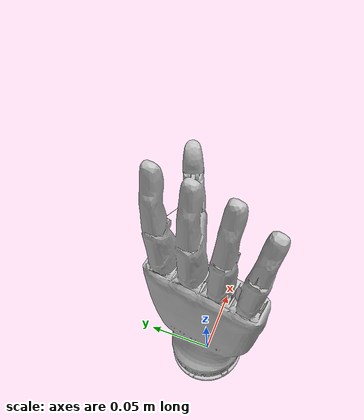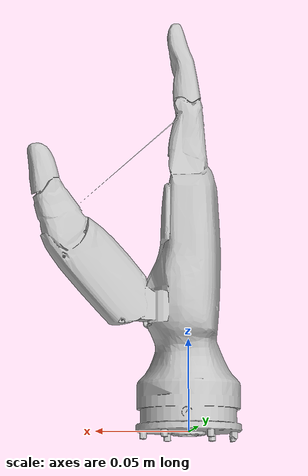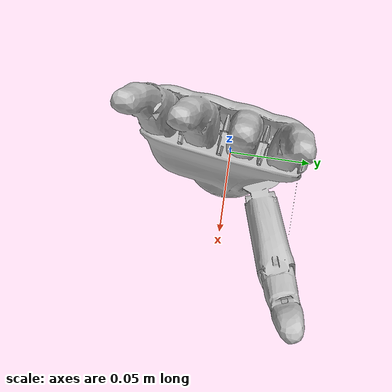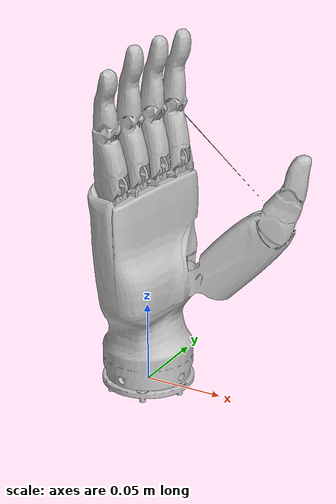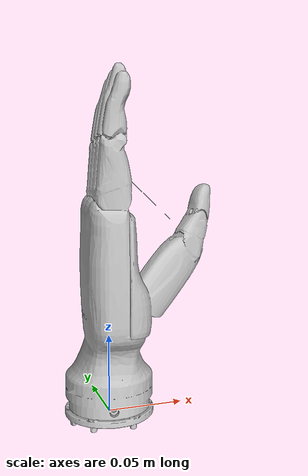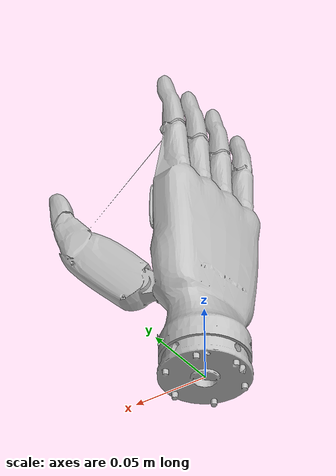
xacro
<?xml version="1.0"?>
<robot name="right_hand" xmlns:xacro="http://www.ros.org/wiki/xacro">
  <!-- Define constants -->
  <xacro:property name="mesh_path" value="file://$(find dual_rm_description)/meshes/arms_65b/" />
  <!-- Macro for visual and collision elements -->
  <xacro:macro name="visual_collision" params="mesh">
    <visual>
      <origin xyz="0 0 0" rpy="0 0 0" />
      <geometry>
        <mesh filename="${mesh_path}${mesh}" />
      </geometry>
      <material name="">
        <color rgba="0.75294 0.75294 0.75294 1" />
      </material>
    </visual>
    <collision>
      <origin xyz="0 0 0" rpy="0 0 0" />
      <geometry>
        <mesh filename="${mesh_path}${mesh}" />
      </geometry>
    </collision>
  </xacro:macro>
  <link
    name="r_hand_base_link">
    <inertial>
      <origin
        xyz="-0.0077366 0.0020217 0.084945"
        rpy="0 0 0" />
      <mass
        value="0.19137" />
      <inertia
        ixx="0.00045852"
        ixy="-2.2207E-05"
        ixz="-5.5348E-06"
        iyy="0.00053494"
        iyz="-2.5678E-06"
        izz="0.00019084" />
    </inertial>
    <xacro:visual_collision mesh="r_hand_base_link.STL" />
  </link>
</robot>
